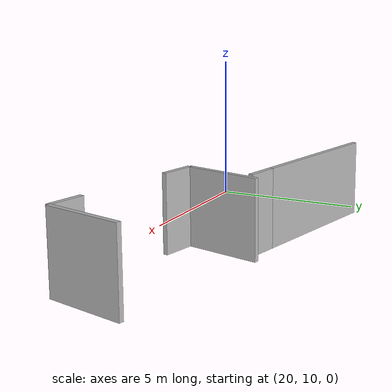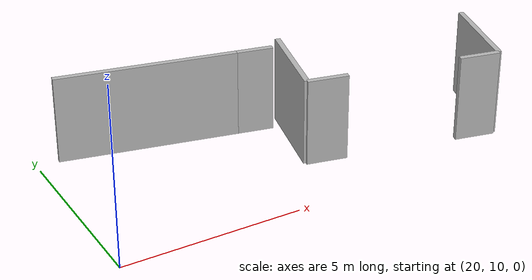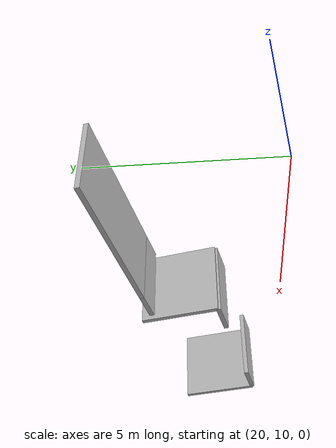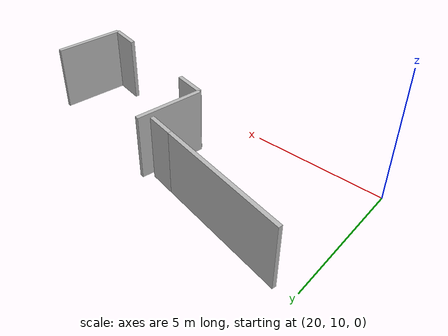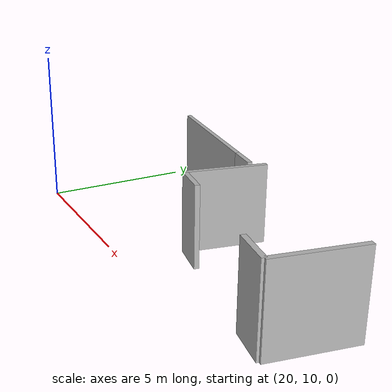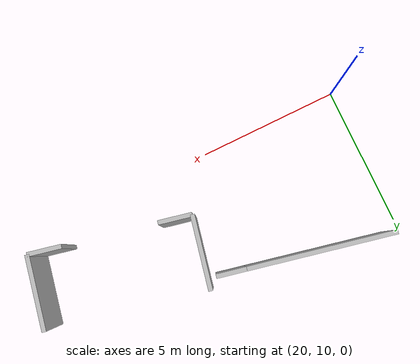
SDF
<?xml version="1.0" ?>
<sdf version="1.6">
  <model name="sps_2505">
    <pose frame="">0 0 0 0 -0 0</pose>
    <static>1</static>
    <self_collide>0</self_collide>
    <allow_auto_disable>0</allow_auto_disable>
    <link name="Wall136">
      <kinematic>0</kinematic>
      <gravity>1</gravity>
      <self_collide>0</self_collide>
      <collision name="collision">
        <geometry>
          <box>
            <size>4.99415 0.15 2.5</size>
          </box>
        </geometry>
        <pose frame="">0 0 0 0 -0 0</pose>
      </collision>
      <visual name="visual">
        <geometry>
          <box>
            <size>4.99415 0.15 2.5</size>
          </box>
        </geometry>
        <pose frame="">0 0 0 0 -0 0</pose>
        <cast_shadows>1</cast_shadows>
        <transparency>0.0</transparency>
      </visual>
      <pose frame="">23.0794 14.7325 1.25 0 0 -0.214212</pose>
    </link>
    <link name="Wall236">
      <kinematic>0</kinematic>
      <gravity>1</gravity>
      <self_collide>0</self_collide>
      <collision name="collision">
        <geometry>
          <box>
            <size>1.00605 0.15 2.5</size>
          </box>
        </geometry>
        <pose frame="">0 0 0 0 -0 0</pose>
      </collision>
      <visual name="visual">
        <geometry>
          <box>
            <size>1.00605 0.15 2.5</size>
          </box>
        </geometry>
        <pose frame="">0 0 0 0 -0 0</pose>
        <cast_shadows>1</cast_shadows>
        <transparency>0.0</transparency>
      </visual>
      <pose frame="">26.0109 14.0947 1.25 0 0 -0.214339</pose>
    </link>
    <link name="Wall2423">
      <kinematic>0</kinematic>
      <gravity>1</gravity>
      <self_collide>0</self_collide>
      <collision name="collision">
        <geometry>
          <box>
            <size>2.52025 0.15 2.5</size>
          </box>
        </geometry>
        <pose frame="">0 0 0 0 -0 0</pose>
      </collision>
      <visual name="visual">
        <geometry>
          <box>
            <size>2.52025 0.15 2.5</size>
          </box>
        </geometry>
        <pose frame="">0 0 0 0 -0 0</pose>
        <cast_shadows>1</cast_shadows>
        <transparency>0.0</transparency>
      </visual>
      <pose frame="">31.9024 11.9454 1.25 0 0 -1.78502</pose>
    </link>
    <link name="Wall2424">
      <kinematic>0</kinematic>
      <gravity>1</gravity>
      <self_collide>0</self_collide>
      <collision name="collision">
        <geometry>
          <box>
            <size>1.13767 0.15 2.5</size>
          </box>
        </geometry>
        <pose frame="">0 0 0 0 -0 0</pose>
      </collision>
      <visual name="visual">
        <geometry>
          <box>
            <size>1.13767 0.15 2.5</size>
          </box>
        </geometry>
        <pose frame="">0 0 0 0 -0 0</pose>
        <cast_shadows>1</cast_shadows>
        <transparency>0.0</transparency>
      </visual>
      <pose frame="">31.0787 10.8351 1.25 0 -0 2.92724</pose>
    </link>
    <link name="Wall2432">
      <kinematic>0</kinematic>
      <gravity>1</gravity>
      <self_collide>0</self_collide>
      <collision name="collision">
        <geometry>
          <box>
            <size>1.13781 0.15 2.5</size>
          </box>
        </geometry>
        <pose frame="">0 0 0 0 -0 0</pose>
      </collision>
      <visual name="visual">
        <geometry>
          <box>
            <size>1.13781 0.15 2.5</size>
          </box>
        </geometry>
        <pose frame="">0 0 0 0 -0 0</pose>
        <cast_shadows>1</cast_shadows>
        <transparency>0.0</transparency>
      </visual>
      <pose frame="">26.8794 11.7488 1.25 0 -0 2.92743</pose>
    </link>
    <link name="Wall2433">
      <kinematic>0</kinematic>
      <gravity>1</gravity>
      <self_collide>0</self_collide>
      <collision name="collision">
        <geometry>
          <box>
            <size>2.52021 0.15 2.5</size>
          </box>
        </geometry>
        <pose frame="">0 0 0 0 -0 0</pose>
      </collision>
      <visual name="visual">
        <geometry>
          <box>
            <size>2.52021 0.15 2.5</size>
          </box>
        </geometry>
        <pose frame="">0 0 0 0 -0 0</pose>
        <cast_shadows>1</cast_shadows>
        <transparency>0.0</transparency>
      </visual>
      <pose frame="">26.5914 13.101 1.25 0 -0 1.35655</pose>
    </link>
  </model>
</sdf>
